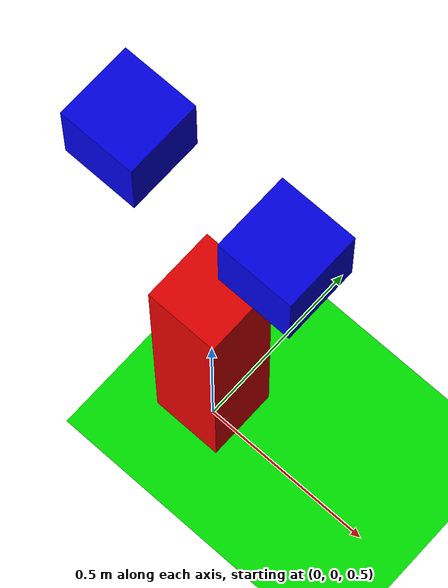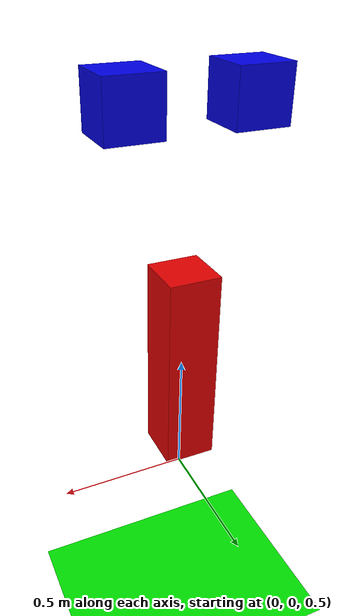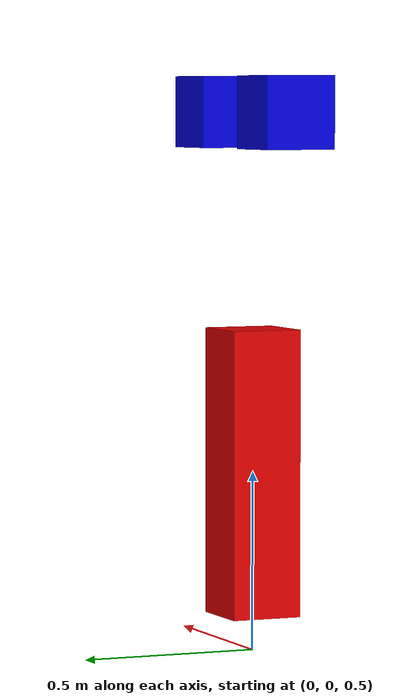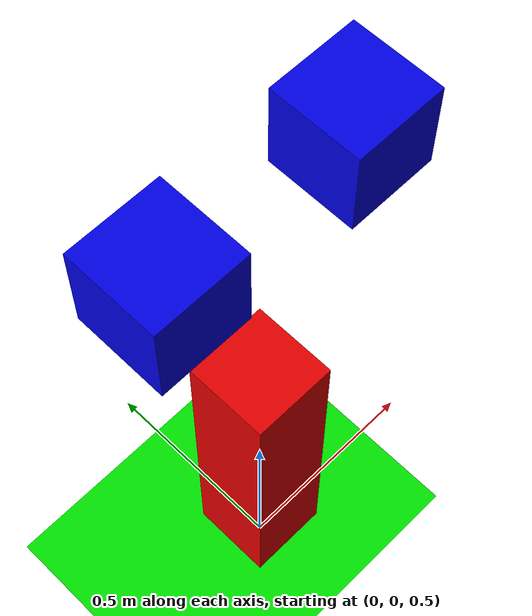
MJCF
<mujoco>
	<worldbody>
		<light diffuse=".5 .5 .5" pos="0 0 3" dir="0 0 -1"/>
		<geom type="plane" size="1 1 0.1" rgba="0 .9 0 1"/>
		<body pos="0 0 1">
			<joint type="free"/>
			<geom type="box" size=".1 .1 .4" rgba=".9 0 0 1"/>
		</body>
		<body pos=".22 0 2">
			<joint type="free"/>
			<geom type="box" size=".1 .1 .1" rgba="0 0 .9 1"/>
		</body>
		<body pos="-.22 0 2">
			<joint type="free"/>
			<geom type="box" size=".1 .1 .1" rgba="0 0 .9 1"/>
		</body>
	</worldbody>
</mujoco>
